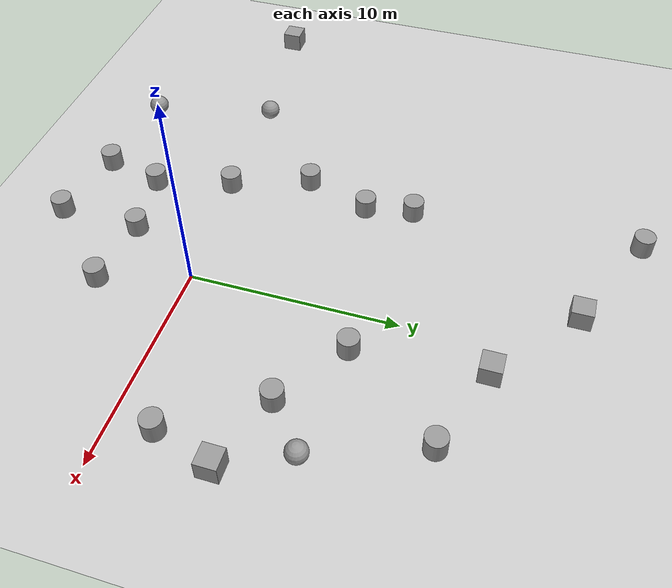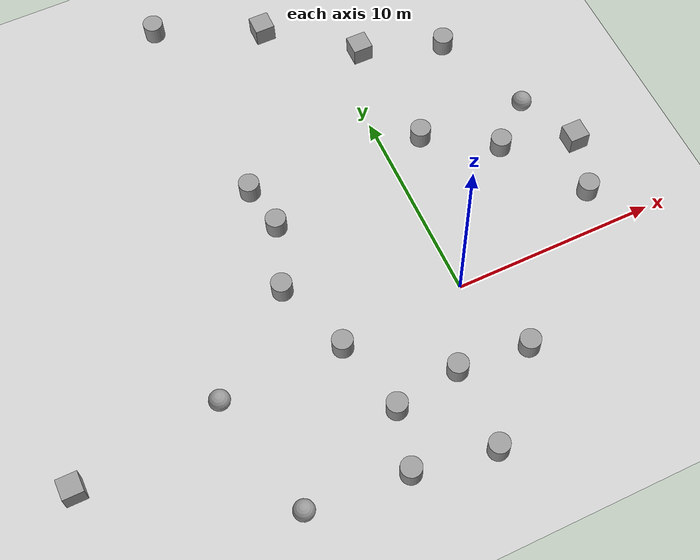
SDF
<sdf version="1.6">
 <world name="default">
  <light name="sun" type="directional">
   <pose>0 0 10 0 -0 0</pose>
   <diffuse>0.8 0.8 0.8 1</diffuse>
   <specular>0.2 0.2 0.2 1</specular>
   <attenuation>
    <range>1000</range>
    <constant>0.9</constant>
    <linear>0.01</linear>
    <quadratic>0.001</quadratic>
   </attenuation>
   <direction>-0.5 0.1 -0.9</direction>
  </light>
  <model name="ground_plane">
   <static>1</static>
   <link name="link">
    <collision name="collision">
     <geometry><plane><normal>0 0 1</normal><size>100 100</size></plane></geometry>
     <surface>
      <contact><collide_bitmask>65535</collide_bitmask></contact>
      <friction><ode><mu>100</mu><mu2>50</mu2></ode></friction>
     </surface>
    </collision>
    <visual name="visual">
     <cast_shadows>0</cast_shadows>
     <geometry><plane><normal>0 0 1</normal><size>100 100</size></plane></geometry>
     <material>
      <script><uri>file://media/materials/scripts/gazebo.material</uri><name>Gazebo/Grey</name></script>
     </material>
    </visual>
   </link>
  </model>
  <gravity>0 0 -9.8</gravity>
  <magnetic_field>6e-06 2.3e-05 -4.2e-05</magnetic_field>
  <atmosphere type="adiabatic"/>
  <physics name="default_physics" default="0" type="ode">
   <max_step_size>0.001</max_step_size>
   <real_time_factor>1</real_time_factor>
   <real_time_update_rate>1000</real_time_update_rate>
  </physics>
  <scene><ambient>0.4 0.4 0.4 1</ambient><background>0.7 0.7 0.7 1</background><shadows>1</shadows></scene>
  <audio><device>default</device></audio>
  <spherical_coordinates>
   <surface_model>EARTH_WGS84</surface_model>
   <latitude_deg>0</latitude_deg>
   <longitude_deg>0</longitude_deg>
   <elevation>0</elevation>
   <heading_deg>0</heading_deg>
  </spherical_coordinates>
  <model name="unit_cylinder">
   <pose>-7.69026 19.9047 0.499993 -3e-06 2e-06 0</pose>
   <link name="link">
    <inertial>
     <mass>1</mass>
     <inertia><ixx>0.145833</ixx><ixy>0</ixy><ixz>0</ixz><iyy>0.145833</iyy><iyz>0</iyz><izz>0.125</izz></inertia>
    </inertial>
    <collision name="collision">
     <geometry><cylinder><radius>0.5</radius><length>1</length></cylinder></geometry>
    </collision>
    <visual name="visual">
     <geometry><cylinder><radius>0.5</radius><length>1</length></cylinder></geometry>
     <material>
      <script><name>Gazebo/Grey</name><uri>file://media/materials/scripts/gazebo.material</uri></script>
     </material>
    </visual>
   </link>
  </model>
  <model name="unit_cylinder_0">
   <pose>-6.22768 -0.474368 0.499993 -3e-06 2e-06 0</pose>
   <link name="link">
    <inertial>
     <mass>1</mass>
     <inertia><ixx>0.145833</ixx><ixy>0</ixy><ixz>0</ixz><iyy>0.145833</iyy><iyz>0</iyz><izz>0.125</izz></inertia>
    </inertial>
    <collision name="collision">
     <geometry><cylinder><radius>0.5</radius><length>1</length></cylinder></geometry>
    </collision>
    <visual name="visual">
     <geometry><cylinder><radius>0.5</radius><length>1</length></cylinder></geometry>
     <material>
      <script><name>Gazebo/Grey</name><uri>file://media/materials/scripts/gazebo.material</uri></script>
     </material>
    </visual>
   </link>
  </model>
  <model name="unit_cylinder_1">
   <pose>1.93282 8.20732 0.499993 -3e-06 2e-06 0</pose>
   <link name="link">
    <inertial>
     <mass>1</mass>
     <inertia><ixx>0.145833</ixx><ixy>0</ixy><ixz>0</ixz><iyy>0.145833</iyy><iyz>0</iyz><izz>0.125</izz></inertia>
    </inertial>
    <collision name="collision">
     <geometry><cylinder><radius>0.5</radius><length>1</length></cylinder></geometry>
    </collision>
    <visual name="visual">
     <geometry><cylinder><radius>0.5</radius><length>1</length></cylinder></geometry>
     <material>
      <script><name>Gazebo/Grey</name><uri>file://media/materials/scripts/gazebo.material</uri></script>
     </material>
    </visual>
   </link>
  </model>
  <model name="unit_cylinder_2">
   <pose>-2.13487 -7.79518 0.499998 3e-06 -2e-06 0</pose>
   <link name="link">
    <inertial>
     <mass>1</mass>
     <inertia><ixx>0.145833</ixx><ixy>0</ixy><ixz>0</ixz><iyy>0.145833</iyy><iyz>0</iyz><izz>0.125</izz></inertia>
    </inertial>
    <collision name="collision">
     <geometry><cylinder><radius>0.5</radius><length>1</length></cylinder></geometry>
    </collision>
    <visual name="visual">
     <geometry><cylinder><radius>0.5</radius><length>1</length></cylinder></geometry>
     <material>
      <script><name>Gazebo/Grey</name><uri>file://media/materials/scripts/gazebo.material</uri></script>
     </material>
    </visual>
   </link>
  </model>
  <model name="unit_cylinder_3">
   <pose>-6.02482 -7.12707 0.499993 -3e-06 3e-06 0</pose>
   <link name="link">
    <inertial>
     <mass>1</mass>
     <inertia><ixx>0.145833</ixx><ixy>0</ixy><ixz>0</ixz><iyy>0.145833</iyy><iyz>0</iyz><izz>0.125</izz></inertia>
    </inertial>
    <collision name="collision">
     <geometry><cylinder><radius>0.5</radius><length>1</length></cylinder></geometry>
    </collision>
    <visual name="visual">
     <geometry><cylinder><radius>0.5</radius><length>1</length></cylinder></geometry>
     <material>
      <script><name>Gazebo/Grey</name><uri>file://media/materials/scripts/gazebo.material</uri></script>
     </material>
    </visual>
   </link>
  </model>
  <model name="unit_cylinder_4">
   <pose>5.24846 6.00094 0.499993 -3e-06 3e-06 0</pose>
   <link name="link">
    <inertial>
     <mass>1</mass>
     <inertia><ixx>0.145833</ixx><ixy>0</ixy><ixz>0</ixz><iyy>0.145833</iyy><iyz>0</iyz><izz>0.125</izz></inertia>
    </inertial>
    <collision name="collision">
     <geometry><cylinder><radius>0.5</radius><length>1</length></cylinder></geometry>
    </collision>
    <visual name="visual">
     <geometry><cylinder><radius>0.5</radius><length>1</length></cylinder></geometry>
     <material>
      <script><name>Gazebo/Grey</name><uri>file://media/materials/scripts/gazebo.material</uri></script>
     </material>
    </visual>
   </link>
  </model>
  <model name="unit_cylinder_5">
   <pose>-6.88796 8.91455 0.499998 3e-06 -3e-06 0</pose>
   <link name="link">
    <inertial>
     <mass>1</mass>
     <inertia><ixx>0.145833</ixx><ixy>0</ixy><ixz>0</ixz><iyy>0.145833</iyy><iyz>0</iyz><izz>0.125</izz></inertia>
    </inertial>
    <collision name="collision">
     <geometry><cylinder><radius>0.5</radius><length>1</length></cylinder></geometry>
    </collision>
    <visual name="visual">
     <geometry><cylinder><radius>0.5</radius><length>1</length></cylinder></geometry>
     <material>
      <script><name>Gazebo/Grey</name><uri>file://media/materials/scripts/gazebo.material</uri></script>
     </material>
    </visual>
   </link>
  </model>
  <model name="unit_cylinder_6">
   <pose>-5.30446 -4.22407 0.499998 3e-06 -3e-06 0</pose>
   <link name="link">
    <inertial>
     <mass>1</mass>
     <inertia><ixx>0.145833</ixx><ixy>0</ixy><ixz>0</ixz><iyy>0.145833</iyy><iyz>0</iyz><izz>0.125</izz></inertia>
    </inertial>
    <collision name="collision">
     <geometry><cylinder><radius>0.5</radius><length>1</length></cylinder></geometry>
    </collision>
    <visual name="visual">
     <geometry><cylinder><radius>0.5</radius><length>1</length></cylinder></geometry>
     <material>
      <script><name>Gazebo/Grey</name><uri>file://media/materials/scripts/gazebo.material</uri></script>
     </material>
    </visual>
   </link>
  </model>
  <model name="unit_cylinder_7">
   <pose>1.40978 -4.06005 0.499992 -3e-06 3e-06 0</pose>
   <link name="link">
    <inertial>
     <mass>1</mass>
     <inertia><ixx>0.145833</ixx><ixy>0</ixy><ixz>0</ixz><iyy>0.145833</iyy><iyz>0</iyz><izz>0.125</izz></inertia>
    </inertial>
    <collision name="collision">
     <geometry><cylinder><radius>0.5</radius><length>1</length></cylinder></geometry>
    </collision>
    <visual name="visual">
     <geometry><cylinder><radius>0.5</radius><length>1</length></cylinder></geometry>
     <material>
      <script><name>Gazebo/Grey</name><uri>file://media/materials/scripts/gazebo.material</uri></script>
     </material>
    </visual>
   </link>
  </model>
  <model name="unit_cylinder_8">
   <pose>7.85994 1.95944 0.499992 -3e-06 3e-06 0</pose>
   <link name="link">
    <inertial>
     <mass>1</mass>
     <inertia><ixx>0.145833</ixx><ixy>0</ixy><ixz>0</ixz><iyy>0.145833</iyy><iyz>0</iyz><izz>0.125</izz></inertia>
    </inertial>
    <collision name="collision">
     <geometry><cylinder><radius>0.5</radius><length>1</length></cylinder></geometry>
    </collision>
    <visual name="visual">
     <geometry><cylinder><radius>0.5</radius><length>1</length></cylinder></geometry>
     <material>
      <script><name>Gazebo/Grey</name><uri>file://media/materials/scripts/gazebo.material</uri></script>
     </material>
    </visual>
   </link>
  </model>
  <model name="unit_cylinder_9">
   <pose>-6.4882 6.57505 0.499998 3e-06 -3e-06 0</pose>
   <link name="link">
    <inertial>
     <mass>1</mass>
     <inertia><ixx>0.145833</ixx><ixy>0</ixy><ixz>0</ixz><iyy>0.145833</iyy><iyz>0</iyz><izz>0.125</izz></inertia>
    </inertial>
    <collision name="collision">
     <geometry><cylinder><radius>0.5</radius><length>1</length></cylinder></geometry>
    </collision>
    <visual name="visual">
     <geometry><cylinder><radius>0.5</radius><length>1</length></cylinder></geometry>
     <material>
      <script><name>Gazebo/Grey</name><uri>file://media/materials/scripts/gazebo.material</uri></script>
     </material>
    </visual>
   </link>
  </model>
  <model name="unit_cylinder_10">
   <pose>-7.57578 3.33408 0.499992 -3e-06 4e-06 0</pose>
   <link name="link">
    <inertial>
     <mass>1</mass>
     <inertia><ixx>0.145833</ixx><ixy>0</ixy><ixz>0</ixz><iyy>0.145833</iyy><iyz>0</iyz><izz>0.125</izz></inertia>
    </inertial>
    <collision name="collision">
     <geometry><cylinder><radius>0.5</radius><length>1</length></cylinder></geometry>
    </collision>
    <visual name="visual">
     <geometry><cylinder><radius>0.5</radius><length>1</length></cylinder></geometry>
     <material>
      <script><name>Gazebo/Grey</name><uri>file://media/materials/scripts/gazebo.material</uri></script>
     </material>
    </visual>
   </link>
  </model>
  <model name="unit_cylinder_11">
   <pose>-2.05628 -3.72171 0.499998 3e-06 -4e-06 0</pose>
   <link name="link">
    <inertial>
     <mass>1</mass>
     <inertia><ixx>0.145833</ixx><ixy>0</ixy><ixz>0</ixz><iyy>0.145833</iyy><iyz>0</iyz><izz>0.125</izz></inertia>
    </inertial>
    <collision name="collision">
     <geometry><cylinder><radius>0.5</radius><length>1</length></cylinder></geometry>
    </collision>
    <visual name="visual">
     <geometry><cylinder><radius>0.5</radius><length>1</length></cylinder></geometry>
     <material>
      <script><name>Gazebo/Grey</name><uri>file://media/materials/scripts/gazebo.material</uri></script>
     </material>
    </visual>
   </link>
  </model>
  <model name="unit_cylinder_12">
   <pose>5.45476 12.7855 0.499992 -3e-06 4e-06 0</pose>
   <link name="link">
    <inertial>
     <mass>1</mass>
     <inertia><ixx>0.145833</ixx><ixy>0</ixy><ixz>0</ixz><iyy>0.145833</iyy><iyz>0</iyz><izz>0.125</izz></inertia>
    </inertial>
    <collision name="collision">
     <geometry><cylinder><radius>0.5</radius><length>1</length></cylinder></geometry>
    </collision>
    <visual name="visual">
     <geometry><cylinder><radius>0.5</radius><length>1</length></cylinder></geometry>
     <material>
      <script><name>Gazebo/Grey</name><uri>file://media/materials/scripts/gazebo.material</uri></script>
     </material>
    </visual>
   </link>
  </model>
  <model name="unit_box">
   <pose>-19.4134 -1.66676 0.499995 0 1e-05 0</pose>
   <link name="link">
    <inertial>
     <mass>1</mass>
     <inertia>
      <ixx>0.166667</ixx>
      <ixy>0</ixy>
      <ixz>0</ixz>
      <iyy>0.166667</iyy>
      <iyz>0</iyz>
      <izz>0.166667</izz>
     </inertia>
    </inertial>
    <collision name="collision"><geometry><box><size>1 1 1</size></box></geometry></collision>
    <visual name="visual">
     <geometry><box><size>1 1 1</size></box></geometry>
     <material>
      <script><name>Gazebo/Grey</name><uri>file://media/materials/scripts/gazebo.material</uri></script>
     </material>
    </visual>
   </link>
  </model>
  <model name="unit_sphere">
   <pose>-10.8678 -6.74592 0.5 0 -0 0</pose>
   <link name="link">
    <inertial>
     <mass>1</mass>
     <inertia><ixx>0.1</ixx><ixy>0</ixy><ixz>0</ixz><iyy>0.1</iyy><iyz>0</iyz><izz>0.1</izz></inertia>
    </inertial>
    <collision name="collision"><geometry><sphere><radius>0.5</radius></sphere></geometry></collision>
    <visual name="visual">
     <geometry><sphere><radius>0.5</radius></sphere></geometry>
     <material>
      <script><name>Gazebo/Grey</name><uri>file://media/materials/scripts/gazebo.material</uri></script>
     </material>
    </visual>
   </link>
  </model>
  <model name="unit_box_0">
   <pose>-2.61591 17.5447 0.499995 0 1e-05 0</pose>
   <link name="link">
    <inertial>
     <mass>1</mass>
     <inertia>
      <ixx>0.166667</ixx>
      <ixy>0</ixy>
      <ixz>0</ixz>
      <iyy>0.166667</iyy>
      <iyz>0</iyz>
      <izz>0.166667</izz>
     </inertia>
    </inertial>
    <collision name="collision"><geometry><box><size>1 1 1</size></box></geometry></collision>
    <visual name="visual">
     <geometry><box><size>1 1 1</size></box></geometry>
     <material>
      <script><name>Gazebo/Grey</name><uri>file://media/materials/scripts/gazebo.material</uri></script>
     </material>
    </visual>
   </link>
  </model>
  <model name="unit_sphere_0">
   <pose>-12.2442 -0.604291 0.5 0 -0 0</pose>
   <link name="link">
    <inertial>
     <mass>1</mass>
     <inertia><ixx>0.1</ixx><ixy>0</ixy><ixz>0</ixz><iyy>0.1</iyy><iyz>0</iyz><izz>0.1</izz></inertia>
    </inertial>
    <collision name="collision"><geometry><sphere><radius>0.5</radius></sphere></geometry></collision>
    <visual name="visual">
     <geometry><sphere><radius>0.5</radius></sphere></geometry>
     <material>
      <script><name>Gazebo/Grey</name><uri>file://media/materials/scripts/gazebo.material</uri></script>
     </material>
    </visual>
   </link>
  </model>
  <model name="unit_box_1">
   <pose>1.40878 14.2372 0.499995 0 1e-05 0</pose>
   <link name="link">
    <inertial>
     <mass>1</mass>
     <inertia>
      <ixx>0.166667</ixx>
      <ixy>0</ixy>
      <ixz>0</ixz>
      <iyy>0.166667</iyy>
      <iyz>0</iyz>
      <izz>0.166667</izz>
     </inertia>
    </inertial>
    <collision name="collision"><geometry><box><size>1 1 1</size></box></geometry></collision>
    <visual name="visual">
     <geometry><box><size>1 1 1</size></box></geometry>
     <material>
      <script><name>Gazebo/Grey</name><uri>file://media/materials/scripts/gazebo.material</uri></script>
     </material>
    </visual>
   </link>
  </model>
  <model name="unit_sphere_1">
   <pose>7.35017 7.76185 0.5 0 -0 0</pose>
   <link name="link">
    <inertial>
     <mass>1</mass>
     <inertia><ixx>0.1</ixx><ixy>0</ixy><ixz>0</ixz><iyy>0.1</iyy><iyz>0</iyz><izz>0.1</izz></inertia>
    </inertial>
    <collision name="collision"><geometry><sphere><radius>0.5</radius></sphere></geometry></collision>
    <visual name="visual">
     <geometry><sphere><radius>0.5</radius></sphere></geometry>
     <material>
      <script><name>Gazebo/Grey</name><uri>file://media/materials/scripts/gazebo.material</uri></script>
     </material>
    </visual>
   </link>
  </model>
  <model name="unit_box_2">
   <pose>8.71606 4.79137 0.5 0 -0 0</pose>
   <link name="link">
    <inertial>
     <mass>1</mass>
     <inertia>
      <ixx>0.166667</ixx>
      <ixy>0</ixy>
      <ixz>0</ixz>
      <iyy>0.166667</iyy>
      <iyz>0</iyz>
      <izz>0.166667</izz>
     </inertia>
    </inertial>
    <collision name="collision"><geometry><box><size>1 1 1</size></box></geometry></collision>
    <visual name="visual">
     <geometry><box><size>1 1 1</size></box></geometry>
     <material>
      <script><name>Gazebo/Grey</name><uri>file://media/materials/scripts/gazebo.material</uri></script>
     </material>
    </visual>
   </link>
  </model>
 </world>
</sdf>
